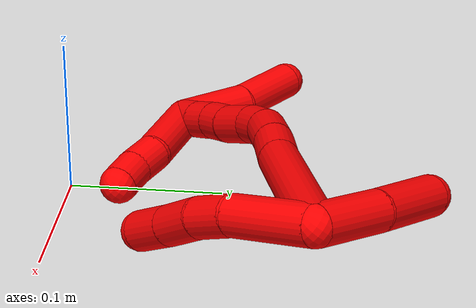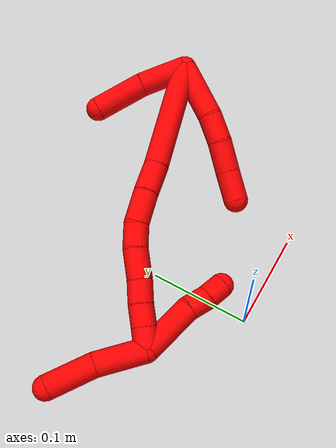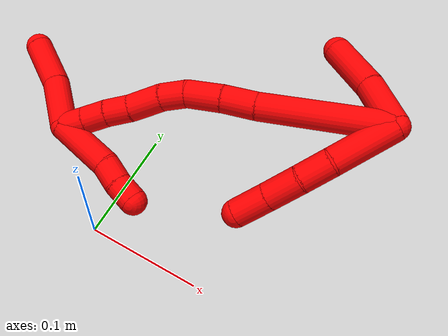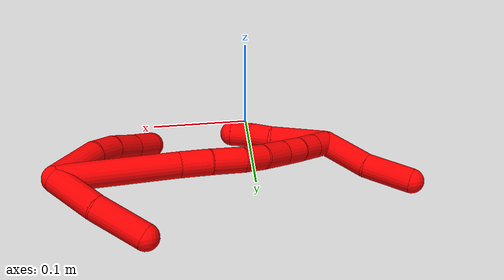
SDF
<sdf version="1.7">
 <world name="default">
  <model name="2">
   <static>0</static>
   <link name="2">
    <collision name="collision-cylinder-e_1_2_8">
     <pose>-0.019674 -0.01829 0.011919 0.993263 -0.733491 -0.410479</pose>
     <geometry><cylinder><radius>0.0125</radius><length>0.058776</length></cylinder></geometry>
     <surface>
      <friction><ode><mu>1.16</mu><mu2>1.16</mu2><slip1>0</slip1><slip2>0</slip2></ode></friction>
      <contact><ode><kp>1e+06</kp><kd>1</kd><max_vel>0</max_vel><min_depth>0.001</min_depth></ode></contact>
     </surface>
    </collision>
    <visual name="visual-cylinder-e_1_2_8">
     <pose>-0.019674 -0.01829 0.011919 0.993263 -0.733491 -0.410479</pose>
     <geometry><cylinder><radius>0.0125</radius><length>0.058776</length></cylinder></geometry>
     <material><ambient>1 0 0 1</ambient></material>
    </visual>
    <collision name="collision-cylinder-e_2_8_9">
     <pose>-0.049203 -0.046553 0.027135 1.25142 -0.753472 -0.55689</pose>
     <geometry><cylinder><radius>0.0125</radius><length>0.028806</length></cylinder></geometry>
     <surface>
      <friction><ode><mu>1.16</mu><mu2>1.16</mu2><slip1>0</slip1><slip2>0</slip2></ode></friction>
      <contact><ode><kp>1e+06</kp><kd>1</kd><max_vel>0</max_vel><min_depth>0.001</min_depth></ode></contact>
     </surface>
    </collision>
    <visual name="visual-cylinder-e_2_8_9">
     <pose>-0.049203 -0.046553 0.027135 1.25142 -0.753472 -0.55689</pose>
     <geometry><cylinder><radius>0.0125</radius><length>0.028806</length></cylinder></geometry>
     <material><ambient>1 0 0 1</ambient></material>
    </visual>
    <collision name="collision-cylinder-e_3_9_10">
     <pose>-0.069723 -0.067922 0.031791 1.45225 -0.748839 -0.671446</pose>
     <geometry><cylinder><radius>0.0125</radius><length>0.031334</length></cylinder></geometry>
     <surface>
      <friction><ode><mu>1.16</mu><mu2>1.16</mu2><slip1>0</slip1><slip2>0</slip2></ode></friction>
      <contact><ode><kp>1e+06</kp><kd>1</kd><max_vel>0</max_vel><min_depth>0.001</min_depth></ode></contact>
     </surface>
    </collision>
    <visual name="visual-cylinder-e_3_9_10">
     <pose>-0.069723 -0.067922 0.031791 1.45225 -0.748839 -0.671446</pose>
     <geometry><cylinder><radius>0.0125</radius><length>0.031334</length></cylinder></geometry>
     <material><ambient>1 0 0 1</ambient></material>
    </visual>
    <collision name="collision-cylinder-e_4_10_6">
     <pose>-0.091171 -0.090351 0.035032 1.40165 -0.766656 -0.655912</pose>
     <geometry><cylinder><radius>0.0125</radius><length>0.031084</length></cylinder></geometry>
     <surface>
      <friction><ode><mu>1.16</mu><mu2>1.16</mu2><slip1>0</slip1><slip2>0</slip2></ode></friction>
      <contact><ode><kp>1e+06</kp><kd>1</kd><max_vel>0</max_vel><min_depth>0.001</min_depth></ode></contact>
     </surface>
    </collision>
    <visual name="visual-cylinder-e_4_10_6">
     <pose>-0.091171 -0.090351 0.035032 1.40165 -0.766656 -0.655912</pose>
     <geometry><cylinder><radius>0.0125</radius><length>0.031084</length></cylinder></geometry>
     <material><ambient>1 0 0 1</ambient></material>
    </visual>
    <collision name="collision-cylinder-e_1_2_11">
     <pose>-0.014548 0.008316 -0.017089 -2.68871 -0.653336 1.94723</pose>
     <geometry><cylinder><radius>0.0125</radius><length>0.047869</length></cylinder></geometry>
     <surface>
      <friction><ode><mu>1.16</mu><mu2>1.16</mu2><slip1>0</slip1><slip2>0</slip2></ode></friction>
      <contact><ode><kp>1e+06</kp><kd>1</kd><max_vel>0</max_vel><min_depth>0.001</min_depth></ode></contact>
     </surface>
    </collision>
    <visual name="visual-cylinder-e_1_2_11">
     <pose>-0.014548 0.008316 -0.017089 -2.68871 -0.653336 1.94723</pose>
     <geometry><cylinder><radius>0.0125</radius><length>0.047869</length></cylinder></geometry>
     <material><ambient>1 0 0 1</ambient></material>
    </visual>
    <collision name="collision-cylinder-e_2_11_5">
     <pose>-0.047418 0.023185 -0.051522 -2.78035 -0.779464 2.3049</pose>
     <geometry><cylinder><radius>0.0125</radius><length>0.052131</length></cylinder></geometry>
     <surface>
      <friction><ode><mu>1.16</mu><mu2>1.16</mu2><slip1>0</slip1><slip2>0</slip2></ode></friction>
      <contact><ode><kp>1e+06</kp><kd>1</kd><max_vel>0</max_vel><min_depth>0.001</min_depth></ode></contact>
     </surface>
    </collision>
    <visual name="visual-cylinder-e_2_11_5">
     <pose>-0.047418 0.023185 -0.051522 -2.78035 -0.779464 2.3049</pose>
     <geometry><cylinder><radius>0.0125</radius><length>0.052131</length></cylinder></geometry>
     <material><ambient>1 0 0 1</ambient></material>
    </visual>
    <collision name="collision-cylinder-e_1_2_12">
     <pose>-0.056598 -0.009669 -0.001622 1.73704 -1.39928 -1.56544</pose>
     <geometry><cylinder><radius>0.0125</radius><length>0.114882</length></cylinder></geometry>
     <surface>
      <friction><ode><mu>1.16</mu><mu2>1.16</mu2><slip1>0</slip1><slip2>0</slip2></ode></friction>
      <contact><ode><kp>1e+06</kp><kd>1</kd><max_vel>0</max_vel><min_depth>0.001</min_depth></ode></contact>
     </surface>
    </collision>
    <visual name="visual-cylinder-e_1_2_12">
     <pose>-0.056598 -0.009669 -0.001622 1.73704 -1.39928 -1.56544</pose>
     <geometry><cylinder><radius>0.0125</radius><length>0.114882</length></cylinder></geometry>
     <material><ambient>1 0 0 1</ambient></material>
    </visual>
    <collision name="collision-cylinder-e_2_12_13">
     <pose>-0.128421 -0.020898 -0.004179 2.11031 -1.4519 -2.00506</pose>
     <geometry><cylinder><radius>0.0125</radius><length>0.030666</length></cylinder></geometry>
     <surface>
      <friction><ode><mu>1.16</mu><mu2>1.16</mu2><slip1>0</slip1><slip2>0</slip2></ode></friction>
      <contact><ode><kp>1e+06</kp><kd>1</kd><max_vel>0</max_vel><min_depth>0.001</min_depth></ode></contact>
     </surface>
    </collision>
    <visual name="visual-cylinder-e_2_12_13">
     <pose>-0.128421 -0.020898 -0.004179 2.11031 -1.4519 -2.00506</pose>
     <geometry><cylinder><radius>0.0125</radius><length>0.030666</length></cylinder></geometry>
     <material><ambient>1 0 0 1</ambient></material>
    </visual>
    <collision name="collision-cylinder-e_3_13_14">
     <pose>-0.159886 -0.025484 -0.006205 1.91694 -1.37526 -1.72663</pose>
     <geometry><cylinder><radius>0.0125</radius><length>0.033112</length></cylinder></geometry>
     <surface>
      <friction><ode><mu>1.16</mu><mu2>1.16</mu2><slip1>0</slip1><slip2>0</slip2></ode></friction>
      <contact><ode><kp>1e+06</kp><kd>1</kd><max_vel>0</max_vel><min_depth>0.001</min_depth></ode></contact>
     </surface>
    </collision>
    <visual name="visual-cylinder-e_3_13_14">
     <pose>-0.159886 -0.025484 -0.006205 1.91694 -1.37526 -1.72663</pose>
     <geometry><cylinder><radius>0.0125</radius><length>0.033112</length></cylinder></geometry>
     <material><ambient>1 0 0 1</ambient></material>
    </visual>
    <collision name="collision-cylinder-e_4_14_15">
     <pose>-0.186877 -0.033435 -0.006831 1.47657 -1.13956 -1.0556</pose>
     <geometry><cylinder><radius>0.0125</radius><length>0.023668</length></cylinder></geometry>
     <surface>
      <friction><ode><mu>1.16</mu><mu2>1.16</mu2><slip1>0</slip1><slip2>0</slip2></ode></friction>
      <contact><ode><kp>1e+06</kp><kd>1</kd><max_vel>0</max_vel><min_depth>0.001</min_depth></ode></contact>
     </surface>
    </collision>
    <visual name="visual-cylinder-e_4_14_15">
     <pose>-0.186877 -0.033435 -0.006831 1.47657 -1.13956 -1.0556</pose>
     <geometry><cylinder><radius>0.0125</radius><length>0.023668</length></cylinder></geometry>
     <material><ambient>1 0 0 1</ambient></material>
    </visual>
    <collision name="collision-cylinder-e_5_15_16">
     <pose>-0.210159 -0.047037 -0.00464 1.37459 -0.956026 -0.804155</pose>
     <geometry><cylinder><radius>0.0125</radius><length>0.030679</length></cylinder></geometry>
     <surface>
      <friction><ode><mu>1.16</mu><mu2>1.16</mu2><slip1>0</slip1><slip2>0</slip2></ode></friction>
      <contact><ode><kp>1e+06</kp><kd>1</kd><max_vel>0</max_vel><min_depth>0.001</min_depth></ode></contact>
     </surface>
    </collision>
    <visual name="visual-cylinder-e_5_15_16">
     <pose>-0.210159 -0.047037 -0.00464 1.37459 -0.956026 -0.804155</pose>
     <geometry><cylinder><radius>0.0125</radius><length>0.030679</length></cylinder></geometry>
     <material><ambient>1 0 0 1</ambient></material>
    </visual>
    <collision name="collision-cylinder-e_6_16_17">
     <pose>-0.232878 -0.06103 -0.001702 1.3463 -1.07945 -0.891273</pose>
     <geometry><cylinder><radius>0.0125</radius><length>0.023112</length></cylinder></geometry>
     <surface>
      <friction><ode><mu>1.16</mu><mu2>1.16</mu2><slip1>0</slip1><slip2>0</slip2></ode></friction>
      <contact><ode><kp>1e+06</kp><kd>1</kd><max_vel>0</max_vel><min_depth>0.001</min_depth></ode></contact>
     </surface>
    </collision>
    <visual name="visual-cylinder-e_6_16_17">
     <pose>-0.232878 -0.06103 -0.001702 1.3463 -1.07945 -0.891273</pose>
     <geometry><cylinder><radius>0.0125</radius><length>0.023112</length></cylinder></geometry>
     <material><ambient>1 0 0 1</ambient></material>
    </visual>
    <collision name="collision-cylinder-e_7_17_18">
     <pose>-0.252217 -0.072322 0.00104 1.3204 -0.977573 -0.783202</pose>
     <geometry><cylinder><radius>0.0125</radius><length>0.022069</length></cylinder></geometry>
     <surface>
      <friction><ode><mu>1.16</mu><mu2>1.16</mu2><slip1>0</slip1><slip2>0</slip2></ode></friction>
      <contact><ode><kp>1e+06</kp><kd>1</kd><max_vel>0</max_vel><min_depth>0.001</min_depth></ode></contact>
     </surface>
    </collision>
    <visual name="visual-cylinder-e_7_17_18">
     <pose>-0.252217 -0.072322 0.00104 1.3204 -0.977573 -0.783202</pose>
     <geometry><cylinder><radius>0.0125</radius><length>0.022069</length></cylinder></geometry>
     <material><ambient>1 0 0 1</ambient></material>
    </visual>
    <collision name="collision-cylinder-e_8_18_1">
     <pose>-0.270561 -0.083947 0.004142 1.29926 -1.00313 -0.789349</pose>
     <geometry><cylinder><radius>0.0125</radius><length>0.021812</length></cylinder></geometry>
     <surface>
      <friction><ode><mu>1.16</mu><mu2>1.16</mu2><slip1>0</slip1><slip2>0</slip2></ode></friction>
      <contact><ode><kp>1e+06</kp><kd>1</kd><max_vel>0</max_vel><min_depth>0.001</min_depth></ode></contact>
     </surface>
    </collision>
    <visual name="visual-cylinder-e_8_18_1">
     <pose>-0.270561 -0.083947 0.004142 1.29926 -1.00313 -0.789349</pose>
     <geometry><cylinder><radius>0.0125</radius><length>0.021812</length></cylinder></geometry>
     <material><ambient>1 0 0 1</ambient></material>
    </visual>
    <collision name="collision-cylinder-e_1_1_19">
     <pose>-0.29427 -0.077739 -0.011578 -2.54053 -0.605462 1.57855</pose>
     <geometry><cylinder><radius>0.0125</radius><length>0.051</length></cylinder></geometry>
     <surface>
      <friction><ode><mu>1.16</mu><mu2>1.16</mu2><slip1>0</slip1><slip2>0</slip2></ode></friction>
      <contact><ode><kp>1e+06</kp><kd>1</kd><max_vel>0</max_vel><min_depth>0.001</min_depth></ode></contact>
     </surface>
    </collision>
    <visual name="visual-cylinder-e_1_1_19">
     <pose>-0.29427 -0.077739 -0.011578 -2.54053 -0.605462 1.57855</pose>
     <geometry><cylinder><radius>0.0125</radius><length>0.051</length></cylinder></geometry>
     <material><ambient>1 0 0 1</ambient></material>
    </visual>
    <collision name="collision-cylinder-e_2_19_4">
     <pose>-0.326423 -0.055241 -0.042132 -2.46541 -0.803803 1.75938</pose>
     <geometry><cylinder><radius>0.0125</radius><length>0.049</length></cylinder></geometry>
     <surface>
      <friction><ode><mu>1.16</mu><mu2>1.16</mu2><slip1>0</slip1><slip2>0</slip2></ode></friction>
      <contact><ode><kp>1e+06</kp><kd>1</kd><max_vel>0</max_vel><min_depth>0.001</min_depth></ode></contact>
     </surface>
    </collision>
    <visual name="visual-cylinder-e_2_19_4">
     <pose>-0.326423 -0.055241 -0.042132 -2.46541 -0.803803 1.75938</pose>
     <geometry><cylinder><radius>0.0125</radius><length>0.049</length></cylinder></geometry>
     <material><ambient>1 0 0 1</ambient></material>
    </visual>
    <collision name="collision-cylinder-e_1_1_20">
     <pose>-0.25363 -0.096876 0.01442 0.696408 1.16104 0.467481</pose>
     <geometry><cylinder><radius>0.0125</radius><length>0.056971</length></cylinder></geometry>
     <surface>
      <friction><ode><mu>1.16</mu><mu2>1.16</mu2><slip1>0</slip1><slip2>0</slip2></ode></friction>
      <contact><ode><kp>1e+06</kp><kd>1</kd><max_vel>0</max_vel><min_depth>0.001</min_depth></ode></contact>
     </surface>
    </collision>
    <visual name="visual-cylinder-e_1_1_20">
     <pose>-0.25363 -0.096876 0.01442 0.696408 1.16104 0.467481</pose>
     <geometry><cylinder><radius>0.0125</radius><length>0.056971</length></cylinder></geometry>
     <material><ambient>1 0 0 1</ambient></material>
    </visual>
    <collision name="collision-cylinder-e_2_20_21">
     <pose>-0.218743 -0.109043 0.027581 0.831739 0.92413 0.432988</pose>
     <geometry><cylinder><radius>0.0125</radius><length>0.021952</length></cylinder></geometry>
     <surface>
      <friction><ode><mu>1.16</mu><mu2>1.16</mu2><slip1>0</slip1><slip2>0</slip2></ode></friction>
      <contact><ode><kp>1e+06</kp><kd>1</kd><max_vel>0</max_vel><min_depth>0.001</min_depth></ode></contact>
     </surface>
    </collision>
    <visual name="visual-cylinder-e_2_20_21">
     <pose>-0.218743 -0.109043 0.027581 0.831739 0.92413 0.432988</pose>
     <geometry><cylinder><radius>0.0125</radius><length>0.021952</length></cylinder></geometry>
     <material><ambient>1 0 0 1</ambient></material>
    </visual>
    <collision name="collision-cylinder-e_3_21_3">
     <pose>-0.200729 -0.117776 0.035298 0.867079 1.07183 0.536579</pose>
     <geometry><cylinder><radius>0.0125</radius><length>0.021078</length></cylinder></geometry>
     <surface>
      <friction><ode><mu>1.16</mu><mu2>1.16</mu2><slip1>0</slip1><slip2>0</slip2></ode></friction>
      <contact><ode><kp>1e+06</kp><kd>1</kd><max_vel>0</max_vel><min_depth>0.001</min_depth></ode></contact>
     </surface>
    </collision>
    <visual name="visual-cylinder-e_3_21_3">
     <pose>-0.200729 -0.117776 0.035298 0.867079 1.07183 0.536579</pose>
     <geometry><cylinder><radius>0.0125</radius><length>0.021078</length></cylinder></geometry>
     <material><ambient>1 0 0 1</ambient></material>
    </visual>
    <collision name="collision-sphere-3">
     <pose>-0.191475 -0.121621 0.038561 0 -0 0</pose>
     <geometry><sphere><radius>0.0125</radius></sphere></geometry>
     <surface>
      <friction><ode><mu>1.16</mu><mu2>1.16</mu2><slip1>0</slip1><slip2>0</slip2></ode></friction>
      <contact><ode><kp>1e+06</kp><kd>1</kd><max_vel>0</max_vel><min_depth>0.001</min_depth></ode></contact>
     </surface>
    </collision>
    <visual name="visual-sphere-3">
     <pose>-0.191475 -0.121621 0.038561 0 -0 0</pose>
     <geometry><sphere><radius>0.0125</radius></sphere></geometry>
     <material><ambient>1 0 0 1</ambient></material>
    </visual>
    <collision name="collision-sphere-21">
     <pose>-0.209983 -0.113931 0.032035 0 -0 0</pose>
     <geometry><sphere><radius>0.0125</radius></sphere></geometry>
     <surface>
      <friction><ode><mu>1.16</mu><mu2>1.16</mu2><slip1>0</slip1><slip2>0</slip2></ode></friction>
      <contact><ode><kp>1e+06</kp><kd>1</kd><max_vel>0</max_vel><min_depth>0.001</min_depth></ode></contact>
     </surface>
    </collision>
    <visual name="visual-sphere-21">
     <pose>-0.209983 -0.113931 0.032035 0 -0 0</pose>
     <geometry><sphere><radius>0.0125</radius></sphere></geometry>
     <material><ambient>1 0 0 1</ambient></material>
    </visual>
    <collision name="collision-sphere-20">
     <pose>-0.227502 -0.104155 0.023126 0 -0 0</pose>
     <geometry><sphere><radius>0.0125</radius></sphere></geometry>
     <surface>
      <friction><ode><mu>1.16</mu><mu2>1.16</mu2><slip1>0</slip1><slip2>0</slip2></ode></friction>
      <contact><ode><kp>1e+06</kp><kd>1</kd><max_vel>0</max_vel><min_depth>0.001</min_depth></ode></contact>
     </surface>
    </collision>
    <visual name="visual-sphere-20">
     <pose>-0.227502 -0.104155 0.023126 0 -0 0</pose>
     <geometry><sphere><radius>0.0125</radius></sphere></geometry>
     <material><ambient>1 0 0 1</ambient></material>
    </visual>
    <collision name="collision-sphere-4">
     <pose>-0.344063 -0.044601 -0.055393 0 -0 0</pose>
     <geometry><sphere><radius>0.0125</radius></sphere></geometry>
     <surface>
      <friction><ode><mu>1.16</mu><mu2>1.16</mu2><slip1>0</slip1><slip2>0</slip2></ode></friction>
      <contact><ode><kp>1e+06</kp><kd>1</kd><max_vel>0</max_vel><min_depth>0.001</min_depth></ode></contact>
     </surface>
    </collision>
    <visual name="visual-sphere-4">
     <pose>-0.344063 -0.044601 -0.055393 0 -0 0</pose>
     <geometry><sphere><radius>0.0125</radius></sphere></geometry>
     <material><ambient>1 0 0 1</ambient></material>
    </visual>
    <collision name="collision-sphere-11">
     <pose>-0.029096 0.016632 -0.034179 0 -0 0</pose>
     <geometry><sphere><radius>0.0125</radius></sphere></geometry>
     <surface>
      <friction><ode><mu>1.16</mu><mu2>1.16</mu2><slip1>0</slip1><slip2>0</slip2></ode></friction>
      <contact><ode><kp>1e+06</kp><kd>1</kd><max_vel>0</max_vel><min_depth>0.001</min_depth></ode></contact>
     </surface>
    </collision>
    <visual name="visual-sphere-11">
     <pose>-0.029096 0.016632 -0.034179 0 -0 0</pose>
     <geometry><sphere><radius>0.0125</radius></sphere></geometry>
     <material><ambient>1 0 0 1</ambient></material>
    </visual>
    <collision name="collision-sphere-6">
     <pose>-0.101953 -0.101385 0.036917 0 -0 0</pose>
     <geometry><sphere><radius>0.0125</radius></sphere></geometry>
     <surface>
      <friction><ode><mu>1.16</mu><mu2>1.16</mu2><slip1>0</slip1><slip2>0</slip2></ode></friction>
      <contact><ode><kp>1e+06</kp><kd>1</kd><max_vel>0</max_vel><min_depth>0.001</min_depth></ode></contact>
     </surface>
    </collision>
    <visual name="visual-sphere-6">
     <pose>-0.101953 -0.101385 0.036917 0 -0 0</pose>
     <geometry><sphere><radius>0.0125</radius></sphere></geometry>
     <material><ambient>1 0 0 1</ambient></material>
    </visual>
    <collision name="collision-sphere-10">
     <pose>-0.080389 -0.079317 0.033148 0 -0 0</pose>
     <geometry><sphere><radius>0.0125</radius></sphere></geometry>
     <surface>
      <friction><ode><mu>1.16</mu><mu2>1.16</mu2><slip1>0</slip1><slip2>0</slip2></ode></friction>
      <contact><ode><kp>1e+06</kp><kd>1</kd><max_vel>0</max_vel><min_depth>0.001</min_depth></ode></contact>
     </surface>
    </collision>
    <visual name="visual-sphere-10">
     <pose>-0.080389 -0.079317 0.033148 0 -0 0</pose>
     <geometry><sphere><radius>0.0125</radius></sphere></geometry>
     <material><ambient>1 0 0 1</ambient></material>
    </visual>
    <collision name="collision-sphere-9">
     <pose>-0.059057 -0.056526 0.030433 0 -0 0</pose>
     <geometry><sphere><radius>0.0125</radius></sphere></geometry>
     <surface>
      <friction><ode><mu>1.16</mu><mu2>1.16</mu2><slip1>0</slip1><slip2>0</slip2></ode></friction>
      <contact><ode><kp>1e+06</kp><kd>1</kd><max_vel>0</max_vel><min_depth>0.001</min_depth></ode></contact>
     </surface>
    </collision>
    <visual name="visual-sphere-9">
     <pose>-0.059057 -0.056526 0.030433 0 -0 0</pose>
     <geometry><sphere><radius>0.0125</radius></sphere></geometry>
     <material><ambient>1 0 0 1</ambient></material>
    </visual>
    <collision name="collision-sphere-2">
     <geometry><sphere><radius>0.0125</radius></sphere></geometry>
     <surface>
      <friction><ode><mu>1.16</mu><mu2>1.16</mu2><slip1>0</slip1><slip2>0</slip2></ode></friction>
      <contact><ode><kp>1e+06</kp><kd>1</kd><max_vel>0</max_vel><min_depth>0.001</min_depth></ode></contact>
     </surface>
    </collision>
    <visual name="visual-sphere-2">
     <geometry><sphere><radius>0.0125</radius></sphere></geometry>
     <material><ambient>1 0 0 1</ambient></material>
    </visual>
    <collision name="collision-sphere-19">
     <pose>-0.308783 -0.065882 -0.02887 0 -0 0</pose>
     <geometry><sphere><radius>0.0125</radius></sphere></geometry>
     <surface>
      <friction><ode><mu>1.16</mu><mu2>1.16</mu2><slip1>0</slip1><slip2>0</slip2></ode></friction>
      <contact><ode><kp>1e+06</kp><kd>1</kd><max_vel>0</max_vel><min_depth>0.001</min_depth></ode></contact>
     </surface>
    </collision>
    <visual name="visual-sphere-19">
     <pose>-0.308783 -0.065882 -0.02887 0 -0 0</pose>
     <geometry><sphere><radius>0.0125</radius></sphere></geometry>
     <material><ambient>1 0 0 1</ambient></material>
    </visual>
    <collision name="collision-sphere-8">
     <pose>-0.039349 -0.03658 0.023837 0 -0 0</pose>
     <geometry><sphere><radius>0.0125</radius></sphere></geometry>
     <surface>
      <friction><ode><mu>1.16</mu><mu2>1.16</mu2><slip1>0</slip1><slip2>0</slip2></ode></friction>
      <contact><ode><kp>1e+06</kp><kd>1</kd><max_vel>0</max_vel><min_depth>0.001</min_depth></ode></contact>
     </surface>
    </collision>
    <visual name="visual-sphere-8">
     <pose>-0.039349 -0.03658 0.023837 0 -0 0</pose>
     <geometry><sphere><radius>0.0125</radius></sphere></geometry>
     <material><ambient>1 0 0 1</ambient></material>
    </visual>
    <collision name="collision-sphere-5">
     <pose>-0.065739 0.029737 -0.068866 0 -0 0</pose>
     <geometry><sphere><radius>0.0125</radius></sphere></geometry>
     <surface>
      <friction><ode><mu>1.16</mu><mu2>1.16</mu2><slip1>0</slip1><slip2>0</slip2></ode></friction>
      <contact><ode><kp>1e+06</kp><kd>1</kd><max_vel>0</max_vel><min_depth>0.001</min_depth></ode></contact>
     </surface>
    </collision>
    <visual name="visual-sphere-5">
     <pose>-0.065739 0.029737 -0.068866 0 -0 0</pose>
     <geometry><sphere><radius>0.0125</radius></sphere></geometry>
     <material><ambient>1 0 0 1</ambient></material>
    </visual>
    <collision name="collision-sphere-12">
     <pose>-0.113196 -0.019338 -0.003245 0 -0 0</pose>
     <geometry><sphere><radius>0.0125</radius></sphere></geometry>
     <surface>
      <friction><ode><mu>1.16</mu><mu2>1.16</mu2><slip1>0</slip1><slip2>0</slip2></ode></friction>
      <contact><ode><kp>1e+06</kp><kd>1</kd><max_vel>0</max_vel><min_depth>0.001</min_depth></ode></contact>
     </surface>
    </collision>
    <visual name="visual-sphere-12">
     <pose>-0.113196 -0.019338 -0.003245 0 -0 0</pose>
     <geometry><sphere><radius>0.0125</radius></sphere></geometry>
     <material><ambient>1 0 0 1</ambient></material>
    </visual>
    <collision name="collision-sphere-13">
     <pose>-0.143646 -0.022458 -0.005113 0 -0 0</pose>
     <geometry><sphere><radius>0.0125</radius></sphere></geometry>
     <surface>
      <friction><ode><mu>1.16</mu><mu2>1.16</mu2><slip1>0</slip1><slip2>0</slip2></ode></friction>
      <contact><ode><kp>1e+06</kp><kd>1</kd><max_vel>0</max_vel><min_depth>0.001</min_depth></ode></contact>
     </surface>
    </collision>
    <visual name="visual-sphere-13">
     <pose>-0.143646 -0.022458 -0.005113 0 -0 0</pose>
     <geometry><sphere><radius>0.0125</radius></sphere></geometry>
     <material><ambient>1 0 0 1</ambient></material>
    </visual>
    <collision name="collision-sphere-14">
     <pose>-0.176127 -0.02851 -0.007296 0 -0 0</pose>
     <geometry><sphere><radius>0.0125</radius></sphere></geometry>
     <surface>
      <friction><ode><mu>1.16</mu><mu2>1.16</mu2><slip1>0</slip1><slip2>0</slip2></ode></friction>
      <contact><ode><kp>1e+06</kp><kd>1</kd><max_vel>0</max_vel><min_depth>0.001</min_depth></ode></contact>
     </surface>
    </collision>
    <visual name="visual-sphere-14">
     <pose>-0.176127 -0.02851 -0.007296 0 -0 0</pose>
     <geometry><sphere><radius>0.0125</radius></sphere></geometry>
     <material><ambient>1 0 0 1</ambient></material>
    </visual>
    <collision name="collision-sphere-15">
     <pose>-0.197628 -0.03836 -0.006365 0 -0 0</pose>
     <geometry><sphere><radius>0.0125</radius></sphere></geometry>
     <surface>
      <friction><ode><mu>1.16</mu><mu2>1.16</mu2><slip1>0</slip1><slip2>0</slip2></ode></friction>
      <contact><ode><kp>1e+06</kp><kd>1</kd><max_vel>0</max_vel><min_depth>0.001</min_depth></ode></contact>
     </surface>
    </collision>
    <visual name="visual-sphere-15">
     <pose>-0.197628 -0.03836 -0.006365 0 -0 0</pose>
     <geometry><sphere><radius>0.0125</radius></sphere></geometry>
     <material><ambient>1 0 0 1</ambient></material>
    </visual>
    <collision name="collision-sphere-16">
     <pose>-0.222689 -0.055715 -0.002916 0 -0 0</pose>
     <geometry><sphere><radius>0.0125</radius></sphere></geometry>
     <surface>
      <friction><ode><mu>1.16</mu><mu2>1.16</mu2><slip1>0</slip1><slip2>0</slip2></ode></friction>
      <contact><ode><kp>1e+06</kp><kd>1</kd><max_vel>0</max_vel><min_depth>0.001</min_depth></ode></contact>
     </surface>
    </collision>
    <visual name="visual-sphere-16">
     <pose>-0.222689 -0.055715 -0.002916 0 -0 0</pose>
     <geometry><sphere><radius>0.0125</radius></sphere></geometry>
     <material><ambient>1 0 0 1</ambient></material>
    </visual>
    <collision name="collision-sphere-17">
     <pose>-0.243067 -0.066346 -0.000488 0 -0 0</pose>
     <geometry><sphere><radius>0.0125</radius></sphere></geometry>
     <surface>
      <friction><ode><mu>1.16</mu><mu2>1.16</mu2><slip1>0</slip1><slip2>0</slip2></ode></friction>
      <contact><ode><kp>1e+06</kp><kd>1</kd><max_vel>0</max_vel><min_depth>0.001</min_depth></ode></contact>
     </surface>
    </collision>
    <visual name="visual-sphere-17">
     <pose>-0.243067 -0.066346 -0.000488 0 -0 0</pose>
     <geometry><sphere><radius>0.0125</radius></sphere></geometry>
     <material><ambient>1 0 0 1</ambient></material>
    </visual>
    <collision name="collision-sphere-18">
     <pose>-0.261366 -0.078298 0.002569 0 -0 0</pose>
     <geometry><sphere><radius>0.0125</radius></sphere></geometry>
     <surface>
      <friction><ode><mu>1.16</mu><mu2>1.16</mu2><slip1>0</slip1><slip2>0</slip2></ode></friction>
      <contact><ode><kp>1e+06</kp><kd>1</kd><max_vel>0</max_vel><min_depth>0.001</min_depth></ode></contact>
     </surface>
    </collision>
    <visual name="visual-sphere-18">
     <pose>-0.261366 -0.078298 0.002569 0 -0 0</pose>
     <geometry><sphere><radius>0.0125</radius></sphere></geometry>
     <material><ambient>1 0 0 1</ambient></material>
    </visual>
    <collision name="collision-sphere-1">
     <pose>-0.279757 -0.089596 0.005714 0 -0 0</pose>
     <geometry><sphere><radius>0.0125</radius></sphere></geometry>
     <surface>
      <friction><ode><mu>1.16</mu><mu2>1.16</mu2><slip1>0</slip1><slip2>0</slip2></ode></friction>
      <contact><ode><kp>1e+06</kp><kd>1</kd><max_vel>0</max_vel><min_depth>0.001</min_depth></ode></contact>
     </surface>
    </collision>
    <visual name="visual-sphere-1">
     <pose>-0.279757 -0.089596 0.005714 0 -0 0</pose>
     <geometry><sphere><radius>0.0125</radius></sphere></geometry>
     <material><ambient>1 0 0 1</ambient></material>
    </visual>
    <inertial>
     <pose>-0.144934 -0.043307 -0.001561 0 -0 0</pose>
     <mass>0.75</mass>
     <inertia><ixx>-1.4e-05</ixx><ixy>0</ixy><ixz>0</ixz><iyy>0.0002</iyy><iyz>0</iyz><izz>0.000211</izz></inertia>
    </inertial>
   </link>
   <pose>0.187536 0.172437 0.086197 0.899438 -0.012568 0.172334</pose>
  </model>
 </world>
</sdf>
